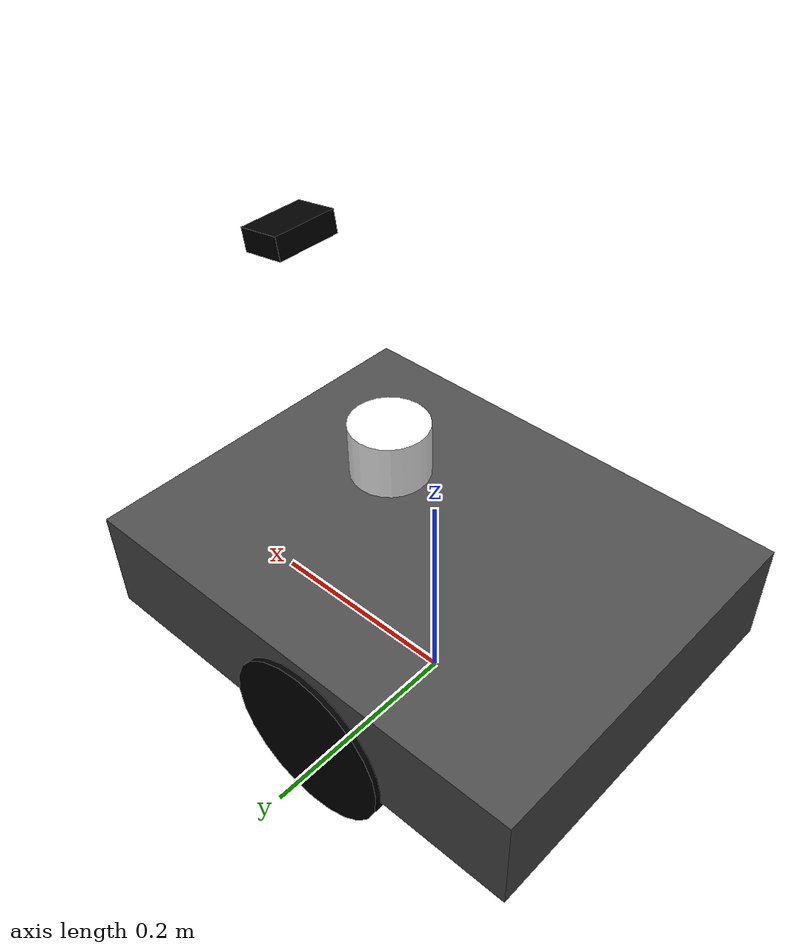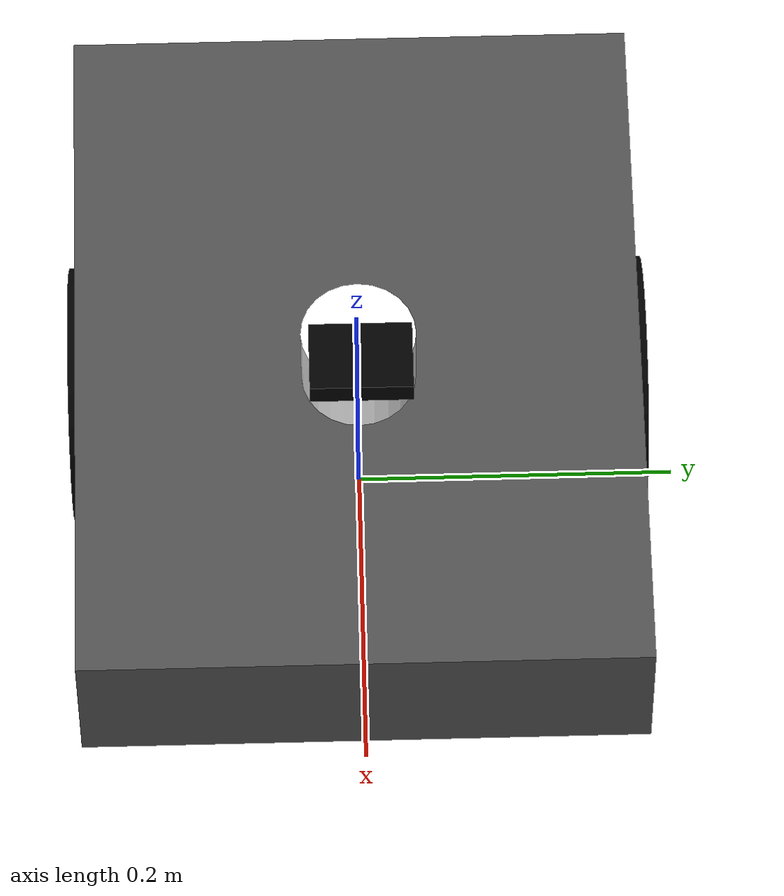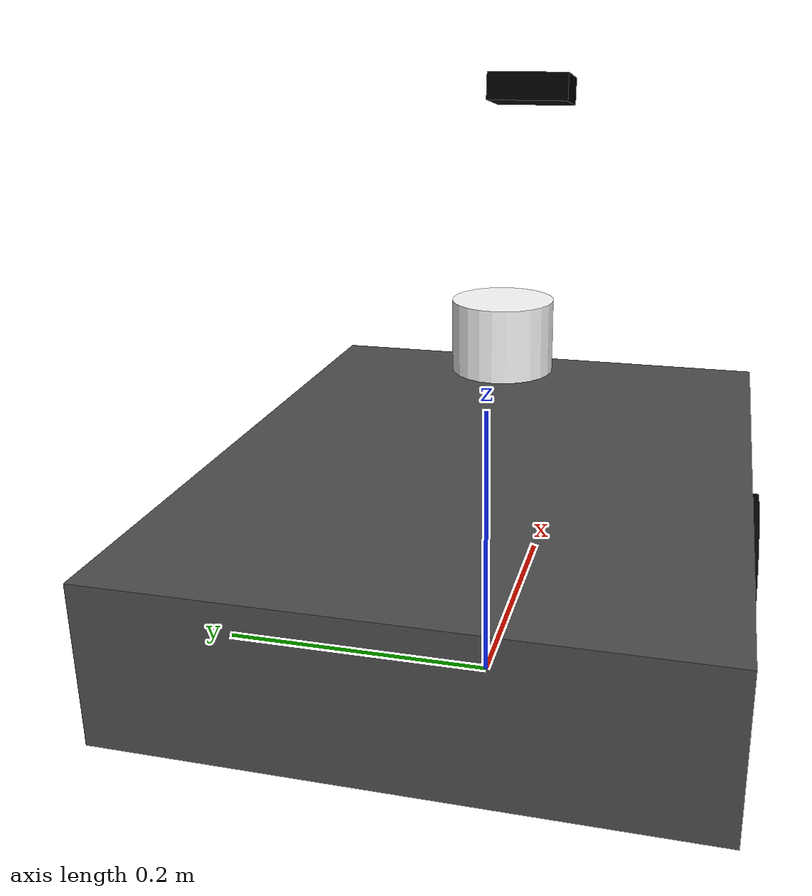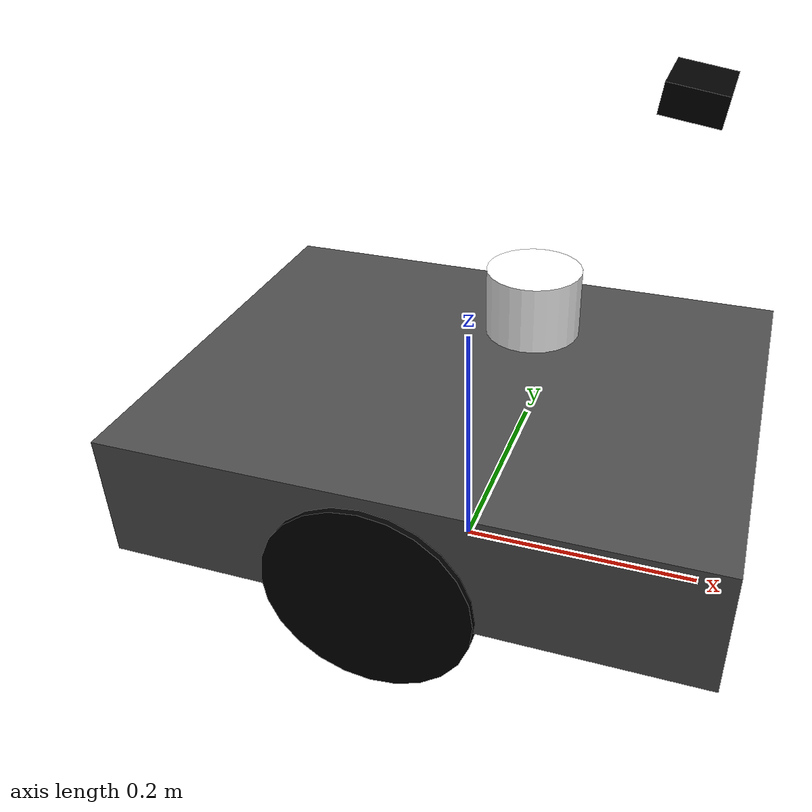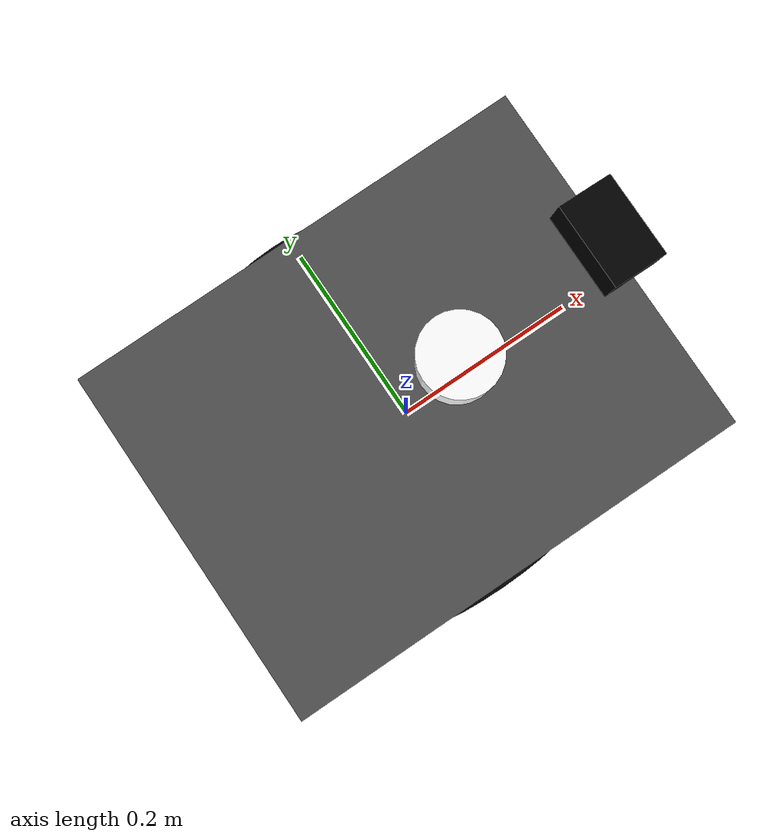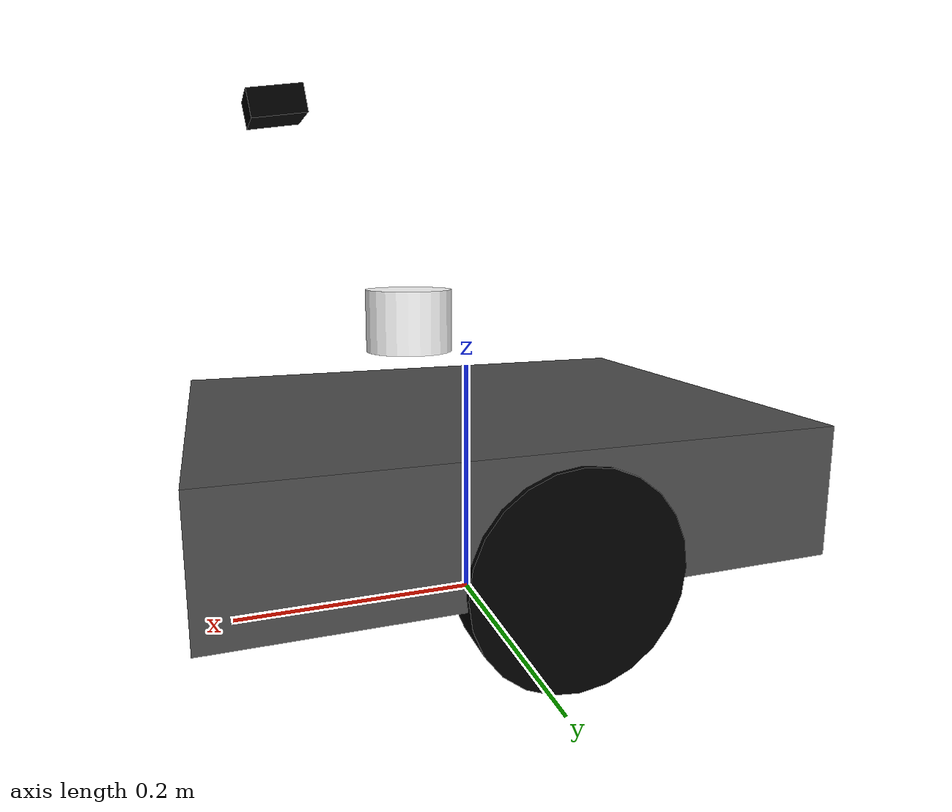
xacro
<?xml version="1.0"?>
<robot name="mbot" xmlns:xacro="http://www.ros.org/wiki/xacro">

  <xacro:include filename="$(find mbot_description)/urdf/macros_common.xacro"/>
  <xacro:include filename="$(find mbot_description)/urdf/sensors.xacro"/>

  <!-- ===================== 可调参数（真机阶段改这里即可） ===================== -->
  <xacro:property name="chassis_length" value="0.45"/>   <!-- 底盘长 x -->
  <xacro:property name="chassis_width"  value="0.35"/>   <!-- 底盘宽 y -->
  <xacro:property name="chassis_height" value="0.10"/>   <!-- 底盘高 z -->

  <xacro:property name="wheel_radius"   value="0.08"/>   <!-- 轮半径 -->
  <xacro:property name="wheel_width"    value="0.04"/>   <!-- 轮宽 -->
  <xacro:property name="wheel_mass"     value="0.3"/>
  <xacro:property name="chassis_mass"   value="3.0"/>

  <xacro:property name="wheel_x"        value="-0.02"/>  <!-- 轮轴相对底盘中心的 x 偏移 -->
  <xacro:property name="wheel_y"        value="0.16"/>   <!-- 轮轴横向半间距 -->
  <xacro:property name="wheel_z"        value="-0.04"/>  <!-- 轮轴相对底盘中心下移 -->

  <!-- 万向从动轮在地面支撑（前/后），castor 几何。 -->
  <xacro:property name="caster_radius"  value="0.02"/>
  <xacro:property name="caster_x"       value="0.18"/>
  <xacro:property name="caster_z"       value="-0.06"/>

  <!-- ===================== 材质 ===================== -->
  <material name="dark_grey"><color rgba="0.3 0.3 0.3 1"/></material>
  <material name="black"><color rgba="0.0 0.0 0.0 1"/></material>
  <material name="white"><color rgba="1.0 1.0 1.0 1"/></material>
  <material name="blue"><color rgba="0.2 0.4 0.9 1"/></material>

  <!-- ===================== base 连杆 ===================== -->
  <!--
    根 link 用 base_footprint（地面投影点，无惯性/几何），base_link 作为其子
    （本体，带惯性）。既符合 odom→base_footprint→base_link 的惯例，也避免
    KDL 不支持的「根 link 带惯性」问题。
  -->
  <link name="base_footprint"/>

  <joint name="base_footprint_joint" type="fixed">
    <parent link="base_footprint"/>
    <child link="base_link"/>
    <origin xyz="0 0 ${wheel_radius - wheel_z}" rpy="0 0 0"/>
  </joint>

  <link name="base_link">
    <visual>
      <geometry>
        <box size="${chassis_length} ${chassis_width} ${chassis_height}"/>
      </geometry>
      <origin xyz="0 0 0" rpy="0 0 0"/>
      <material name="dark_grey"/>
    </visual>
    <collision>
      <geometry>
        <box size="${chassis_length} ${chassis_width} ${chassis_height}"/>
      </geometry>
      <origin xyz="0 0 0" rpy="0 0 0"/>
    </collision>
    <xacro:box_inertia mass="${chassis_mass}" x="${chassis_length}" y="${chassis_width}" z="${chassis_height}"/>
  </link>

  <!-- ===================== 左右驱动轮 ===================== -->
  <xacro:macro name="drive_wheel" params="side y_offset">
    <joint name="${side}_wheel_joint" type="continuous">
      <parent link="base_link"/>
      <child link="${side}_wheel_link"/>
      <origin xyz="${wheel_x} ${y_offset} ${wheel_z}" rpy="0 0 0"/>
      <axis xyz="0 1 0"/>
    </joint>
    <link name="${side}_wheel_link">
      <visual>
        <geometry>
          <cylinder radius="${wheel_radius}" length="${wheel_width}"/>
        </geometry>
        <!-- URDF cylinder 的 length 沿局部 Z 轴；绕 X 转 90° 使长轴沿 Y，盘面朝前后。 -->
        <origin xyz="0 0 0" rpy="${pi/2} 0 0"/>
        <material name="black"/>
      </visual>
      <collision>
        <geometry>
          <cylinder radius="${wheel_radius}" length="${wheel_width}"/>
        </geometry>
        <origin xyz="0 0 0" rpy="${pi/2} 0 0"/>
      </collision>
      <xacro:cylinder_inertia mass="${wheel_mass}" radius="${wheel_radius}" length="${wheel_width}"/>
    </link>
  </xacro:macro>

  <xacro:drive_wheel side="left" y_offset="${wheel_y}"/>
  <xacro:drive_wheel side="right" y_offset="${-wheel_y}"/>

  <!-- ===================== 万向从动轮（前一个，纯几何） ===================== -->
  <joint name="caster_wheel_joint" type="fixed">
    <parent link="base_link"/>
    <child link="caster_wheel_link"/>
    <origin xyz="${caster_x} 0 ${caster_z}" rpy="0 0 0"/>
  </joint>
  <link name="caster_wheel_link">
    <visual>
      <geometry>
        <sphere radius="${caster_radius}"/>
      </geometry>
      <material name="black"/>
    </visual>
    <collision>
      <geometry>
        <sphere radius="${caster_radius}"/>
      </geometry>
    </collision>
    <xacro:sphere_inertia mass="0.05" radius="${caster_radius}"/>
  </link>

  <!-- ===================== 传感器 ===================== -->
  <xacro:camera name="camera" parent="base_link" x="0.15" y="0" z="0.28" roll="0" pitch="0.15" yaw="0"/>
  <xacro:laser name="laser" parent="base_link" x="0.05" y="0" z="0.12" roll="0" pitch="0" yaw="0"/>
  <xacro:imu name="imu" parent="base_link" x="0" y="0" z="0.02" roll="0" pitch="0" yaw="0"/>

</robot>

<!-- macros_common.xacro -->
<!-- 通用宏：惯性 / 几何 / 颜色。供 mbot.xacro 复用，减少手写错误。 -->
<robot xmlns:xacro="http://www.ros.org/wiki/xacro">

  <!-- 圆柱（轮子同轴）惯性，绕 Z 旋转轴。 -->
  <xacro:macro name="cylinder_inertia" params="mass radius length">
    <inertial>
      <mass value="${mass}"/>
      <inertia ixx="${mass * (3 * radius * radius + length * length) / 12}"
              ixy="0" ixz="0"
              iyy="${mass * (3 * radius * radius + length * length) / 12}"
              iyz="0"
              izz="${0.5 * mass * radius * radius}"/>
    </inertial>
  </xacro:macro>

  <!-- 实心立方体（底盘）惯性。x/y/z 为长宽高。 -->
  <xacro:macro name="box_inertia" params="mass x y z">
    <inertial>
      <mass value="${mass}"/>
      <inertia ixx="${mass / 12 * (y * y + z * z)}" ixy="0" ixz="0"
               iyy="${mass / 12 * (x * x + z * z)}" iyz="0"
               izz="${mass / 12 * (x * x + y * y)}"/>
    </inertial>
  </xacro:macro>

  <!-- 球体惯性（yaw 关节的简化近似）。 -->
  <xacro:macro name="sphere_inertia" params="mass radius">
    <inertial>
      <mass value="${mass}"/>
      <inertia ixx="${2.0 / 5.0 * mass * radius * radius}" ixy="0" ixz="0"
               iyy="${2.0 / 5.0 * mass * radius * radius}" iyz="0"
               izz="${2.0 / 5.0 * mass * radius * radius}"/>
    </inertial>
  </xacro:macro>

</robot>

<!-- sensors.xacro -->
<!--
  传感器挂载宏：相机 / 激光雷达 / IMU。

  这些是「物理安装位」描述，只定义坐标系与几何占位，
  不包含任何 gazebo 插件——插件在 mbot_gazebo 阶段注入。

  相机对应 eai_bot 的 YOLO/SCRFD 输入镜头；外参先按合理假设，
  真机阶段再用手眼标定修正。
-->
<robot xmlns:xacro="http://www.ros.org/wiki/xacro">

  <!-- 相机：前视，离地约 1.0m，略下压。 -->
  <xacro:macro name="camera" params="name parent x y z roll pitch yaw">
    <joint name="${name}_joint" type="fixed">
      <parent link="${parent}"/>
      <child link="${name}_link"/>
      <origin xyz="${x} ${y} ${z}" rpy="${roll} ${pitch} ${yaw}"/>
    </joint>
    <link name="${name}_link">
      <visual>
        <origin xyz="0 0 0" rpy="0 0 0"/>
        <geometry>
          <box size="0.04 0.06 0.02"/>
        </geometry>
        <material name="black"/>
      </visual>
      <collision>
        <origin xyz="0 0 0" rpy="0 0 0"/>
        <geometry>
          <box size="0.04 0.06 0.02"/>
        </geometry>
      </collision>
      <inertial>
        <mass value="0.05"/>
        <inertia ixx="1e-6" ixy="0" ixz="0" iyy="1e-6" iyz="0" izz="1e-6"/>
      </inertial>
    </link>
  </xacro:macro>

  <!-- 激光雷达：2D 型，装在底盘前上方。 -->
  <xacro:macro name="laser" params="name parent x y z roll pitch yaw">
    <joint name="${name}_joint" type="fixed">
      <parent link="${parent}"/>
      <child link="${name}_link"/>
      <origin xyz="${x} ${y} ${z}" rpy="${roll} ${pitch} ${yaw}"/>
    </joint>
    <link name="${name}_link">
      <visual>
        <geometry>
          <cylinder radius="0.035" length="0.05"/>
        </geometry>
        <material name="white"/>
      </visual>
      <collision>
        <geometry>
          <cylinder radius="0.035" length="0.05"/>
        </geometry>
      </collision>
      <inertial>
        <mass value="0.1"/>
        <inertia ixx="1e-5" ixy="0" ixz="0" iyy="1e-5" iyz="0" izz="1e-5"/>
      </inertial>
    </link>
  </xacro:macro>

  <!-- IMU：装在底盘中心。 -->
  <xacro:macro name="imu" params="name parent x y z roll pitch yaw">
    <joint name="${name}_joint" type="fixed">
      <parent link="${parent}"/>
      <child link="${name}_link"/>
      <origin xyz="${x} ${y} ${z}" rpy="${roll} ${pitch} ${yaw}"/>
    </joint>
    <link name="${name}_link">
      <visual>
        <geometry>
          <box size="0.03 0.03 0.01"/>
        </geometry>
        <material name="blue"/>
      </visual>
      <collision>
        <geometry>
          <box size="0.03 0.03 0.01"/>
        </geometry>
      </collision>
      <inertial>
        <mass value="0.02"/>
        <inertia ixx="1e-6" ixy="0" ixz="0" iyy="1e-6" iyz="0" izz="1e-6"/>
      </inertial>
    </link>
  </xacro:macro>

</robot>
